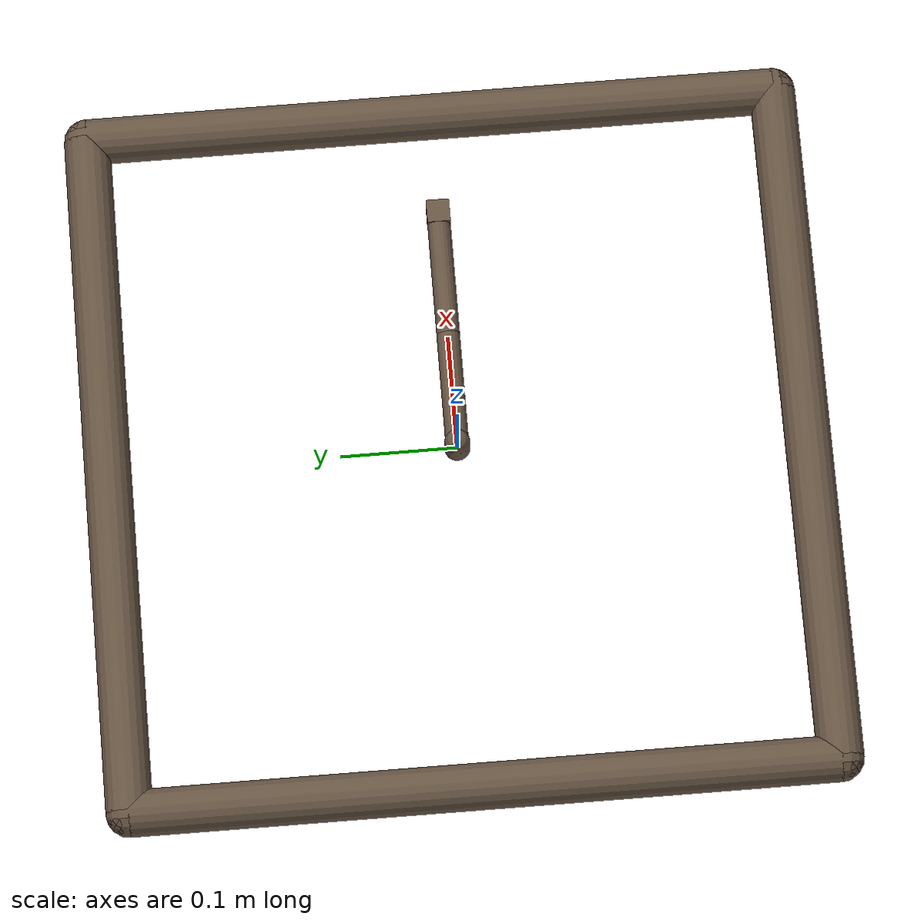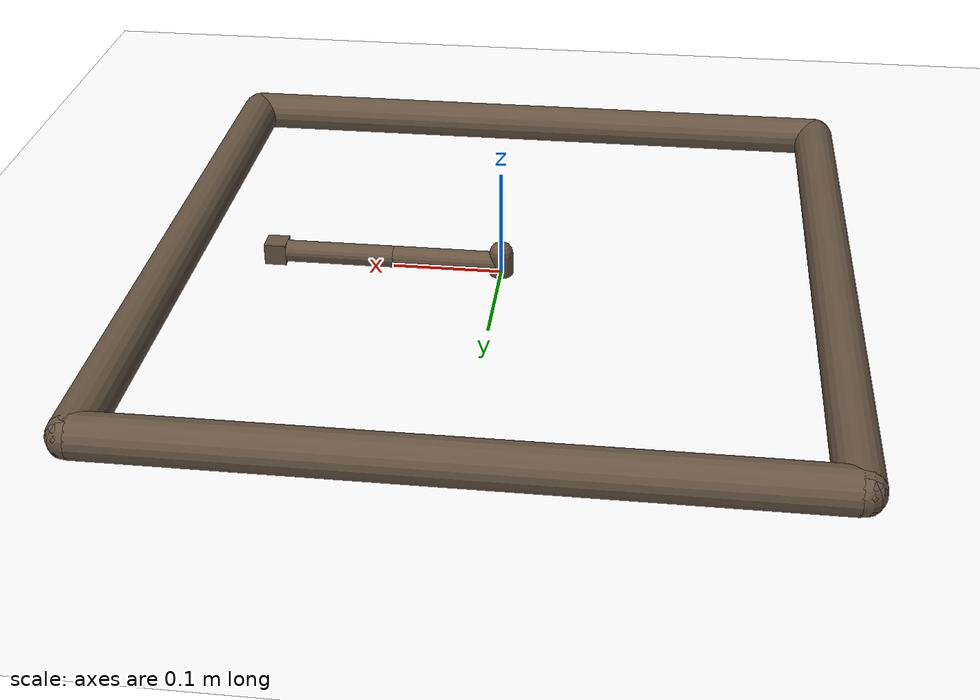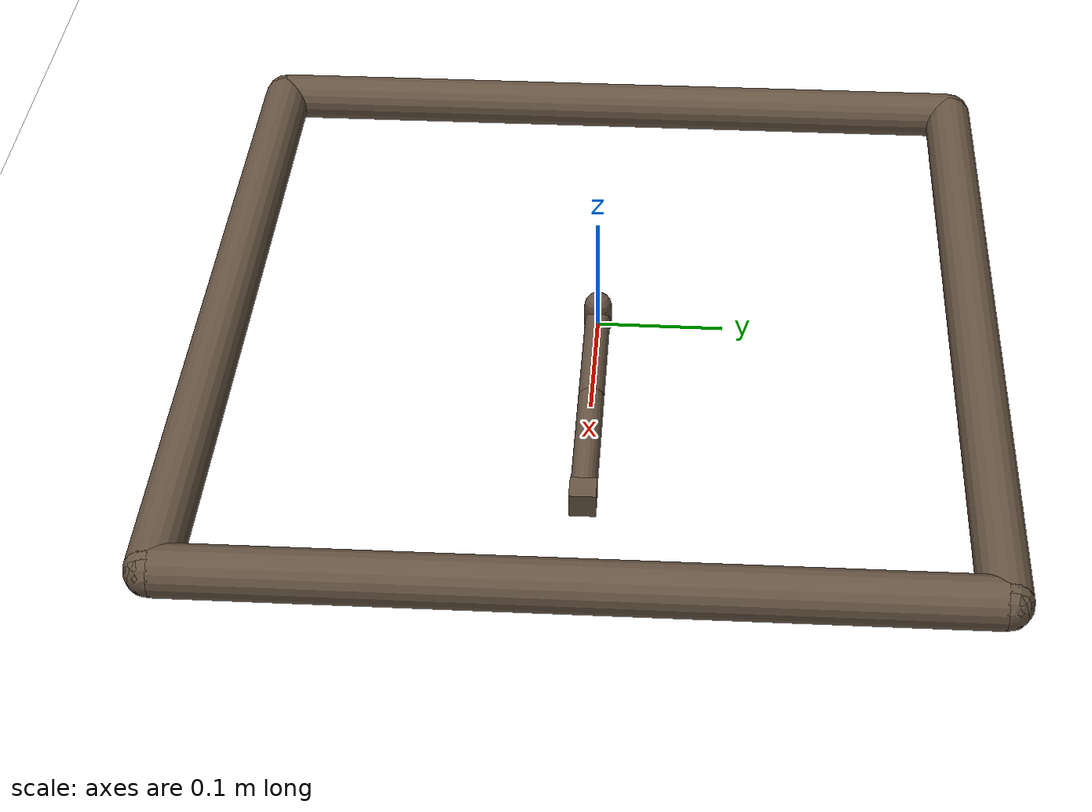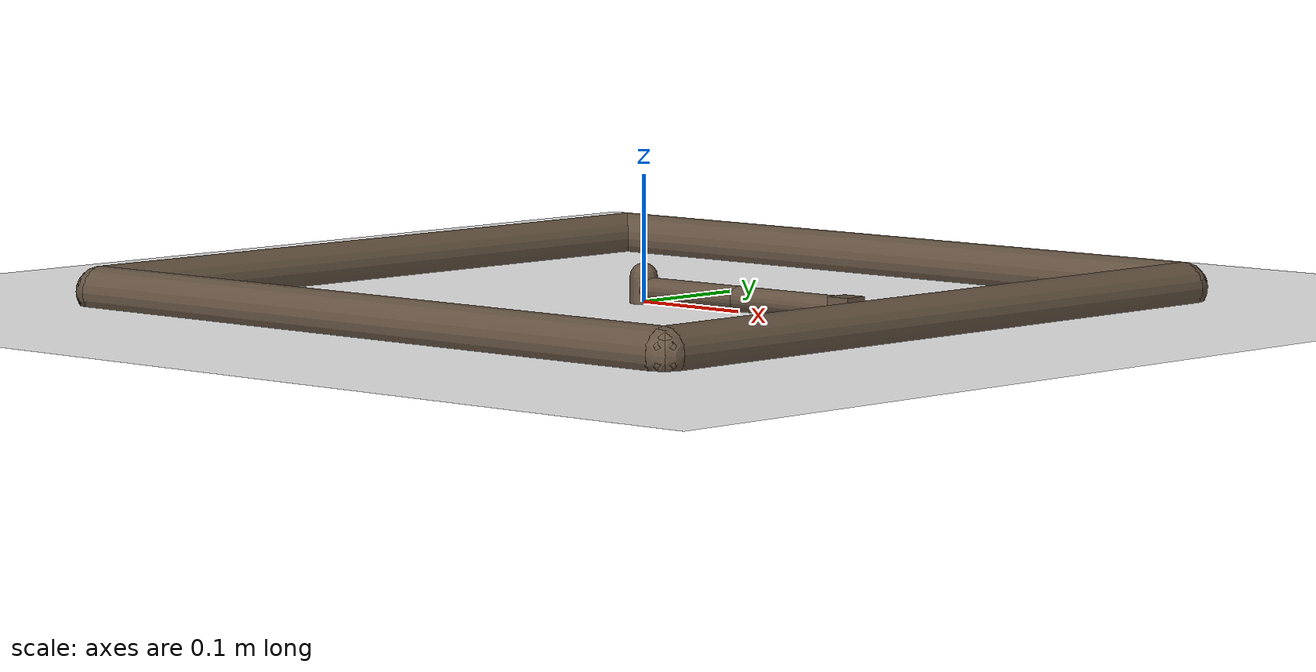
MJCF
<mujoco model="reacher">
  <compiler angle="radian" inertiafromgeom="true"/>
  <default>
    <joint armature="1" damping="1" limited="true"/>
    <geom conaffinity="0" contype="0" friction="1 0.1 0.1" rgba="0.4 0.33 0.26 1.0"/>
  </default>
  <!-- Removed RK4 integrator for brax. -->
  <option gravity="0 0 -9.81" timestep="0.01" />
  <custom>
    <!-- brax custom params -->
    <numeric data="0 0 0.1 -0.1" name="init_qpos"/>
    <numeric data="1000 1000 10" name="constraint_stiffness"/>
    <numeric data="1000" name="constraint_limit_stiffness"/>
    <numeric data="3 3 0.1" name="constraint_vel_damping"/>
    <numeric data="0.1" name="constraint_ang_damping"/>
    <numeric data="0.0" name="ang_damping"/>
    <numeric data="0" name="spring_mass_scale"/>
    <numeric data="1" name="spring_inertia_scale"/>
    <numeric data="5" name="solver_maxls"/>
  </custom>
  <worldbody>
    <light diffuse=".5 .5 .5" pos="0 0 3" dir="0 0 -1"/>
    <!-- Arena -->
    <geom conaffinity="0" contype="0" name="ground" pos="0 0 0" size="1 1 10" type="plane" rgba="1 1 1 1"/>
    <geom conaffinity="0" fromto="-.3 -.3 .01 .3 -.3 .01" name="sideS" size=".02" type="capsule"/>
    <geom conaffinity="0" fromto=" .3 -.3 .01 .3  .3 .01" name="sideE" size=".02" type="capsule"/>
    <geom conaffinity="0" fromto="-.3  .3 .01 .3  .3 .01" name="sideN" size=".02" type="capsule"/>
    <geom conaffinity="0" fromto="-.3 -.3 .01 -.3 .3 .01" name="sideW" size=".02" type="capsule"/>
    <!-- Arm -->
    <geom conaffinity="0" contype="0" fromto="0 0 0 0 0 0.02" name="root" size=".011" type="capsule"/>
    <body name="body0" pos="0 0 .01">
      <geom fromto="0 0 0 0.1 0 0" name="link0" size=".01" type="capsule"/>
      <joint axis="0 0 1" limited="false" name="joint0" pos="0 0 0" type="hinge"/>
      <body name="body1" pos="0.1 0 0">
        <joint axis="0 0 1" limited="true" name="joint1" pos="0 0 0" range="-3.0 3.0" type="hinge"/>
        <geom fromto="0 0 0 0.1 0 0" name="link1" size=".01" type="capsule"/>
        <body name="fingertip" pos="0.11 0 0">
          <geom contype="0" name="fingertip" pos="0 0 0" size=".01 .01 .01" type="box"/>
        </body>
      </body>
    </body>
    <!-- Target -->
    <body name="target" pos="0 0 0.01">
      <!-- The joint `ref` attributes are removed for brax. -->
      <joint armature="0" axis="1 0 0" damping="0" limited="true" name="target_x" pos="0 0 0" range="-.27 .27" stiffness="0" type="slide"/>
      <joint armature="0" axis="0 1 0" damping="0" limited="true" name="target_y" pos="0 0 0" range="-.27 .27" stiffness="0" type="slide"/>
      <geom conaffinity="0" contype="0" name="target" pos="0 0 0" size=".009" type="sphere"/>
    </body>
  </worldbody>
  <actuator>
    <motor ctrllimited="true" ctrlrange="-1.0 1.0" gear="200.0" joint="joint0"/>
    <motor ctrllimited="true" ctrlrange="-1.0 1.0" gear="200.0" joint="joint1"/>
  </actuator>
</mujoco>
